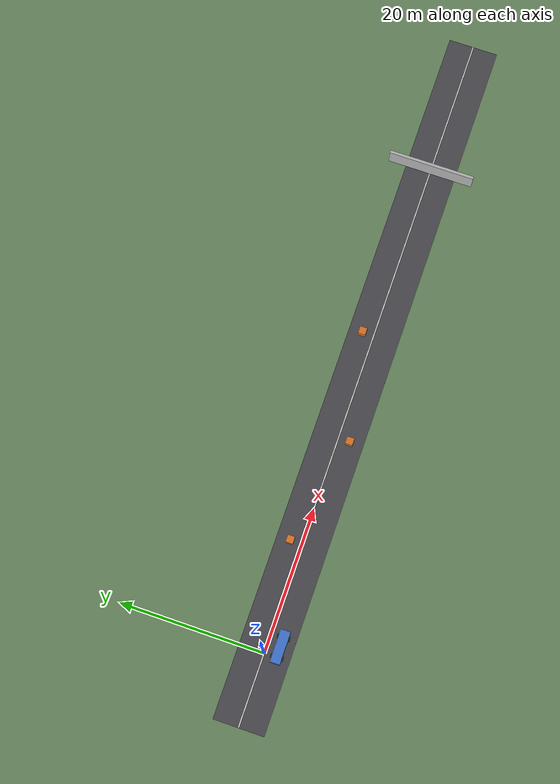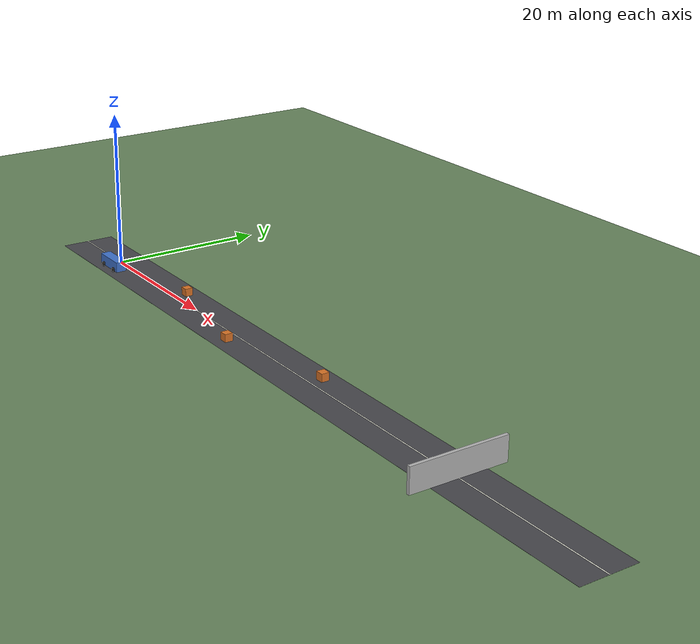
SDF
<?xml version="1.0" ?>
<sdf version="1.9">
  <world name="campus_minimal">

    <physics name="1ms" type="ignored">
      <max_step_size>0.001</max_step_size>
      <real_time_factor>1.0</real_time_factor>
    </physics>

    <spherical_coordinates>
      <surface_model>EARTH_WGS84</surface_model>
      <world_frame_orientation>ENU</world_frame_orientation>
      <latitude_deg>31.230416</latitude_deg>
      <longitude_deg>121.473701</longitude_deg>
      <elevation>10.0</elevation>
      <heading_deg>0.0</heading_deg>
    </spherical_coordinates>

    <plugin filename="gz-sim-physics-system"
            name="gz::sim::systems::Physics"/>
    <plugin filename="gz-sim-user-commands-system"
            name="gz::sim::systems::UserCommands"/>
    <plugin filename="gz-sim-scene-broadcaster-system"
            name="gz::sim::systems::SceneBroadcaster"/>
    <plugin filename="gz-sim-sensors-system"
            name="gz::sim::systems::Sensors">
      <render_engine>ogre2</render_engine>
    </plugin>
    <plugin filename="gz-sim-imu-system"
            name="gz::sim::systems::Imu"/>
    <plugin filename="gz-sim-navsat-system"
            name="gz::sim::systems::NavSat"/>

    <scene>
      <ambient>0.6 0.6 0.6 1</ambient>
      <background>0.75 0.82 0.9 1</background>
      <!-- 关阴影。ODD 限定白天晴朗（SPEC §2），阴影对算法毫无价值，
           但它是 RTF 的头号消耗项之一。 -->
      <shadows>false</shadows>
    </scene>

    <light type="directional" name="sun">
      <cast_shadows>false</cast_shadows>
      <pose>0 0 10 0 0 0</pose>
      <diffuse>0.9 0.9 0.9 1</diffuse>
      <specular>0.2 0.2 0.2 1</specular>
      <direction>-0.4 0.3 -0.9</direction>
    </light>

    <!-- 地面 -->
    <model name="ground_plane">
      <static>true</static>
      <link name="link">
        <collision name="collision">
          <geometry><plane><normal>0 0 1</normal><size>200 200</size></plane></geometry>
          <surface>
            <friction><ode><mu>1.0</mu><mu2>1.0</mu2></ode></friction>
          </surface>
        </collision>
        <visual name="visual">
          <geometry><plane><normal>0 0 1</normal><size>200 200</size></plane></geometry>
          <material>
            <ambient>0.35 0.45 0.32 1</ambient>
            <diffuse>0.4 0.52 0.36 1</diffuse>
          </material>
        </visual>
      </link>
    </model>

    <!-- =====================================================================
         直路：100 m × 7 m，双车道宽度。
         用一块薄板贴在地面上，纯视觉参照物，不参与碰撞（没有 collision 标签）——
         省下一份接触计算。 -->
    <model name="road">
      <static>true</static>
      <pose>40 0 0.005 0 0 0</pose>
      <link name="link">
        <visual name="surface">
          <geometry><box><size>100 7 0.01</size></box></geometry>
          <material>
            <ambient>0.22 0.22 0.24 1</ambient>
            <diffuse>0.28 0.28 0.3 1</diffuse>
          </material>
        </visual>
        <!-- 中心分道线 -->
        <visual name="center_line">
          <pose>0 0 0.006 0 0 0</pose>
          <geometry><box><size>100 0.15 0.01</size></box></geometry>
          <material>
            <ambient>0.85 0.85 0.8 1</ambient>
            <diffuse>0.95 0.95 0.9 1</diffuse>
          </material>
        </visual>
      </link>
    </model>

    <model name="obstacle_1">
      <static>true</static>
      <pose>15 1.6 0.5 0 0 0</pose>
      <link name="link">
        <collision name="collision">
          <geometry><box><size>1 1 1</size></box></geometry>
        </collision>
        <visual name="visual">
          <geometry><box><size>1 1 1</size></box></geometry>
          <material>
            <ambient>0.7 0.35 0.1 1</ambient><diffuse>0.85 0.45 0.15 1</diffuse>
          </material>
        </visual>
      </link>
    </model>

    <model name="obstacle_2">
      <static>true</static>
      <pose>30 -1.6 0.5 0 0 0</pose>
      <link name="link">
        <collision name="collision">
          <geometry><box><size>1 1 1</size></box></geometry>
        </collision>
        <visual name="visual">
          <geometry><box><size>1 1 1</size></box></geometry>
          <material>
            <ambient>0.7 0.35 0.1 1</ambient><diffuse>0.85 0.45 0.15 1</diffuse>
          </material>
        </visual>
      </link>
    </model>

    <model name="obstacle_3">
      <static>true</static>
      <pose>45 1.6 0.5 0 0 0</pose>
      <link name="link">
        <collision name="collision">
          <geometry><box><size>1 1 1</size></box></geometry>
        </collision>
        <visual name="visual">
          <geometry><box><size>1 1 1</size></box></geometry>
          <material>
            <ambient>0.7 0.35 0.1 1</ambient><diffuse>0.85 0.45 0.15 1</diffuse>
          </material>
        </visual>
      </link>
    </model>

    <!-- 一堵墙，给 S3 的激光雷达一个大面积回波目标。
         点云调试时，平整的大面比零散小方块好判断对错得多。 -->
    <model name="wall">
      <static>true</static>
      <pose>70 0 1.5 0 0 0</pose>
      <link name="link">
        <collision name="collision">
          <geometry><box><size>0.4 12 3</size></box></geometry>
        </collision>
        <visual name="visual">
          <geometry><box><size>0.4 12 3</size></box></geometry>
          <material>
            <ambient>0.55 0.55 0.55 1</ambient><diffuse>0.7 0.7 0.7 1</diffuse>
          </material>
        </visual>
      </link>
    </model>

    <include>
      <uri>model://ego_vehicle</uri>
      <name>ego_vehicle</name>
      <pose>0 -1.75 0 0 0 0</pose>
    </include>

  </world>
</sdf>

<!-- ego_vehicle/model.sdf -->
<sdf version="1.9">
  <model name="ego_vehicle">
    <link name="base_link">
      <inertial>
        <!-- 质心不在几何中心：真车质量集中在下半部，用 com_height_m 显式指定。
             放在几何中心会让车过弯时侧倾偏大，看着像悬架太软。 -->
        <pose>1.3500 0 0.5500 0 0 0</pose>
        <mass>1440.0000</mass>
        <inertia>
          <ixx>434.172000</ixx><iyy>2538.672000</iyy><izz>2541.900000</izz>
          <ixy>0</ixy><ixz>0</ixz><iyz>0</iyz>
        </inertia>
      </inertial>
      <collision name="collision">
        <pose>1.3500 0 0.8300 0 0 0</pose>
        <geometry>
          <box><size>4.4000 1.3500 1.3400</size></box>
        </geometry>
      </collision>
      <visual name="visual">
        <pose>1.3500 0 0.8300 0 0 0</pose>
        <geometry>
          <box><size>4.4000 1.3500 1.3400</size></box>
        </geometry>
        <material>
          <ambient>0.2 0.35 0.6 1</ambient>
          <diffuse>0.25 0.45 0.8 1</diffuse>
        </material>
      </visual>

      <sensor name="lidar" type="gpu_lidar">
        <pose>1.3500 0.0000 1.6000 0 0 0</pose>
        <topic>/model/ego_vehicle/lidar</topic>
        <gz_frame_id>lidar_link</gz_frame_id>
        <update_rate>10.0</update_rate>
        <always_on>1</always_on>
        <!-- visualize 只影响 Gazebo GUI 里画不画射线。开着很直观，但几万条
             射线的绘制开销不小，会拉低 RTF —— 调试时临时开，平时关。 -->
        <visualize>false</visualize>
        <lidar>
          <scan>
            <horizontal>
              <samples>1800</samples>
              <resolution>1</resolution>
              <min_angle>-3.141593</min_angle>
              <max_angle>3.141593</max_angle>
            </horizontal>
            <vertical>
              <samples>32</samples>
              <resolution>1</resolution>
              <min_angle>-0.436300</min_angle>
              <max_angle>0.174500</max_angle>
            </vertical>
          </scan>
          <range>
            <min>0.5000</min>
            <max>50.0000</max>
            <!-- 距离量化步长。真实雷达受 ADC 位数限制，这里给 1 cm。 -->
            <resolution>0.01</resolution>
          </range>
          <noise>
            <type>gaussian</type>
            <mean>0.0</mean>
            <stddev>0.0100</stddev>
          </noise>
        </lidar>
      </sensor>

      <sensor name="imu" type="imu">
        <!-- 位姿为全零：IMU 就装在 base_link 原点，见 YAML 里关于杠杆臂的说明。 -->
        <pose>0.0000 0.0000 0.0000 0 0 0</pose>
        <topic>/model/ego_vehicle/imu</topic>
        <gz_frame_id>base_link</gz_frame_id>
        <update_rate>100.0</update_rate>
        <always_on>1</always_on>
      </sensor>

      <sensor name="navsat" type="navsat">
        <pose>0.5000 0.0000 1.6000 0 0 0</pose>
        <topic>/model/ego_vehicle/navsat</topic>
        <gz_frame_id>gnss_link</gz_frame_id>
        <update_rate>10.0</update_rate>
        <always_on>1</always_on>
      </sensor>
    </link>

    <link name="front_left_steer_link">
      <pose>2.7000 0.7750 0.3100 0 0 0</pose>
      <inertial>
        <mass>1.0</mass>
        <inertia>
          <ixx>0.01</ixx><iyy>0.01</iyy><izz>0.01</izz>
          <ixy>0</ixy><ixz>0</ixz><iyz>0</iyz>
        </inertia>
      </inertial>
    </link>

    <link name="front_right_steer_link">
      <pose>2.7000 -0.7750 0.3100 0 0 0</pose>
      <inertial>
        <mass>1.0</mass>
        <inertia>
          <ixx>0.01</ixx><iyy>0.01</iyy><izz>0.01</izz>
          <ixy>0</ixy><ixz>0</ixz><iyz>0</iyz>
        </inertia>
      </inertial>
    </link>

    <link name="front_left_wheel">
      <pose>2.7000 0.7750 0.3100 0 0 0</pose>
      <inertial>
        <mass>15.0000</mass>
        <inertia>
          <ixx>0.410375</ixx><iyy>0.720750</iyy><izz>0.410375</izz>
          <ixy>0</ixy><ixz>0</ixz><iyz>0</iyz>
        </inertia>
      </inertial>
      <collision name="collision">
        <pose>0 0 0 1.5707963 0 0</pose>
        <geometry>
          <cylinder><radius>0.3100</radius><length>0.2000</length></cylinder>
        </geometry>
        <surface>
          <friction>
            <ode><mu>1.2</mu><mu2>1.0</mu2></ode>
          </friction>
        </surface>
      </collision>
      <visual name="visual">
        <pose>0 0 0 1.5707963 0 0</pose>
        <geometry>
          <cylinder><radius>0.3100</radius><length>0.2000</length></cylinder>
        </geometry>
        <material>
          <ambient>0.1 0.1 0.1 1</ambient>
          <diffuse>0.15 0.15 0.15 1</diffuse>
        </material>
      </visual>
    </link>

    <link name="front_right_wheel">
      <pose>2.7000 -0.7750 0.3100 0 0 0</pose>
      <inertial>
        <mass>15.0000</mass>
        <inertia>
          <ixx>0.410375</ixx><iyy>0.720750</iyy><izz>0.410375</izz>
          <ixy>0</ixy><ixz>0</ixz><iyz>0</iyz>
        </inertia>
      </inertial>
      <collision name="collision">
        <pose>0 0 0 1.5707963 0 0</pose>
        <geometry>
          <cylinder><radius>0.3100</radius><length>0.2000</length></cylinder>
        </geometry>
        <surface>
          <friction>
            <ode><mu>1.2</mu><mu2>1.0</mu2></ode>
          </friction>
        </surface>
      </collision>
      <visual name="visual">
        <pose>0 0 0 1.5707963 0 0</pose>
        <geometry>
          <cylinder><radius>0.3100</radius><length>0.2000</length></cylinder>
        </geometry>
        <material>
          <ambient>0.1 0.1 0.1 1</ambient>
          <diffuse>0.15 0.15 0.15 1</diffuse>
        </material>
      </visual>
    </link>

    <link name="rear_left_wheel">
      <pose>0.0000 0.7750 0.3100 0 0 0</pose>
      <inertial>
        <mass>15.0000</mass>
        <inertia>
          <ixx>0.410375</ixx><iyy>0.720750</iyy><izz>0.410375</izz>
          <ixy>0</ixy><ixz>0</ixz><iyz>0</iyz>
        </inertia>
      </inertial>
      <collision name="collision">
        <pose>0 0 0 1.5707963 0 0</pose>
        <geometry>
          <cylinder><radius>0.3100</radius><length>0.2000</length></cylinder>
        </geometry>
        <surface>
          <friction>
            <ode><mu>1.2</mu><mu2>1.0</mu2></ode>
          </friction>
        </surface>
      </collision>
      <visual name="visual">
        <pose>0 0 0 1.5707963 0 0</pose>
        <geometry>
          <cylinder><radius>0.3100</radius><length>0.2000</length></cylinder>
        </geometry>
        <material>
          <ambient>0.1 0.1 0.1 1</ambient>
          <diffuse>0.15 0.15 0.15 1</diffuse>
        </material>
      </visual>
    </link>

    <link name="rear_right_wheel">
      <pose>0.0000 -0.7750 0.3100 0 0 0</pose>
      <inertial>
        <mass>15.0000</mass>
        <inertia>
          <ixx>0.410375</ixx><iyy>0.720750</iyy><izz>0.410375</izz>
          <ixy>0</ixy><ixz>0</ixz><iyz>0</iyz>
        </inertia>
      </inertial>
      <collision name="collision">
        <pose>0 0 0 1.5707963 0 0</pose>
        <geometry>
          <cylinder><radius>0.3100</radius><length>0.2000</length></cylinder>
        </geometry>
        <surface>
          <friction>
            <ode><mu>1.2</mu><mu2>1.0</mu2></ode>
          </friction>
        </surface>
      </collision>
      <visual name="visual">
        <pose>0 0 0 1.5707963 0 0</pose>
        <geometry>
          <cylinder><radius>0.3100</radius><length>0.2000</length></cylinder>
        </geometry>
        <material>
          <ambient>0.1 0.1 0.1 1</ambient>
          <diffuse>0.15 0.15 0.15 1</diffuse>
        </material>
      </visual>
    </link>

    <joint name="front_left_steer_joint" type="revolute">
      <parent>base_link</parent>
      <child>front_left_steer_link</child>
      <axis>
        <xyz>0 0 1</xyz>
        <limit>
          <lower>-0.6000</lower><upper>0.6000</upper>
          <effort>1.0e6</effort>
        </limit>
      </axis>
    </joint>
    <joint name="front_right_steer_joint" type="revolute">
      <parent>base_link</parent>
      <child>front_right_steer_link</child>
      <axis>
        <xyz>0 0 1</xyz>
        <limit>
          <lower>-0.6000</lower><upper>0.6000</upper>
          <effort>1.0e6</effort>
        </limit>
      </axis>
    </joint>

    <!-- 前轮滚动关节挂在转向节下，不是挂在车体上 —— 这样转向和滚动才是两个自由度 -->
    <joint name="front_left_wheel_joint" type="revolute">
      <parent>front_left_steer_link</parent>
      <child>front_left_wheel</child>
      <axis>
        <xyz>0 1 0</xyz>
        <limit><lower>-1e16</lower><upper>1e16</upper></limit>
      </axis>
    </joint>
    <joint name="front_right_wheel_joint" type="revolute">
      <parent>front_right_steer_link</parent>
      <child>front_right_wheel</child>
      <axis>
        <xyz>0 1 0</xyz>
        <limit><lower>-1e16</lower><upper>1e16</upper></limit>
      </axis>
    </joint>

    <!-- 后轮为驱动轮 -->
    <joint name="rear_left_wheel_joint" type="revolute">
      <parent>base_link</parent>
      <child>rear_left_wheel</child>
      <axis>
        <xyz>0 1 0</xyz>
        <limit><lower>-1e16</lower><upper>1e16</upper></limit>
      </axis>
    </joint>
    <joint name="rear_right_wheel_joint" type="revolute">
      <parent>base_link</parent>
      <child>rear_right_wheel</child>
      <axis>
        <xyz>0 1 0</xyz>
        <limit><lower>-1e16</lower><upper>1e16</upper></limit>
      </axis>
    </joint>

    <plugin filename="gz-sim-ackermann-steering-system"
            name="gz::sim::systems::AckermannSteering">
      <left_joint>rear_left_wheel_joint</left_joint>
      <right_joint>rear_right_wheel_joint</right_joint>
      <left_steering_joint>front_left_steer_joint</left_steering_joint>
      <right_steering_joint>front_right_steer_joint</right_steering_joint>
      <kingpin_width>1.5500</kingpin_width>
      <steering_limit>0.6000</steering_limit>
      <wheel_base>2.7000</wheel_base>
      <wheel_separation>1.5500</wheel_separation>
      <wheel_radius>0.3100</wheel_radius>
      <min_velocity>-8.3330</min_velocity>
      <max_velocity>8.3330</max_velocity>
      <min_acceleration>-3.0000</min_acceleration>
      <max_acceleration>1.5000</max_acceleration>
      <topic>/model/ego_vehicle/cmd_vel</topic>
      <odom_topic>/model/ego_vehicle/odometry</odom_topic>
      <tf_topic>/model/ego_vehicle/tf</tf_topic>
      <frame_id>odom</frame_id>
      <child_frame_id>base_link</child_frame_id>
    </plugin>

    <plugin filename="gz-sim-joint-state-publisher-system"
            name="gz::sim::systems::JointStatePublisher">
      <topic>/model/ego_vehicle/joint_state</topic>
    </plugin>
  </model>
</sdf>
